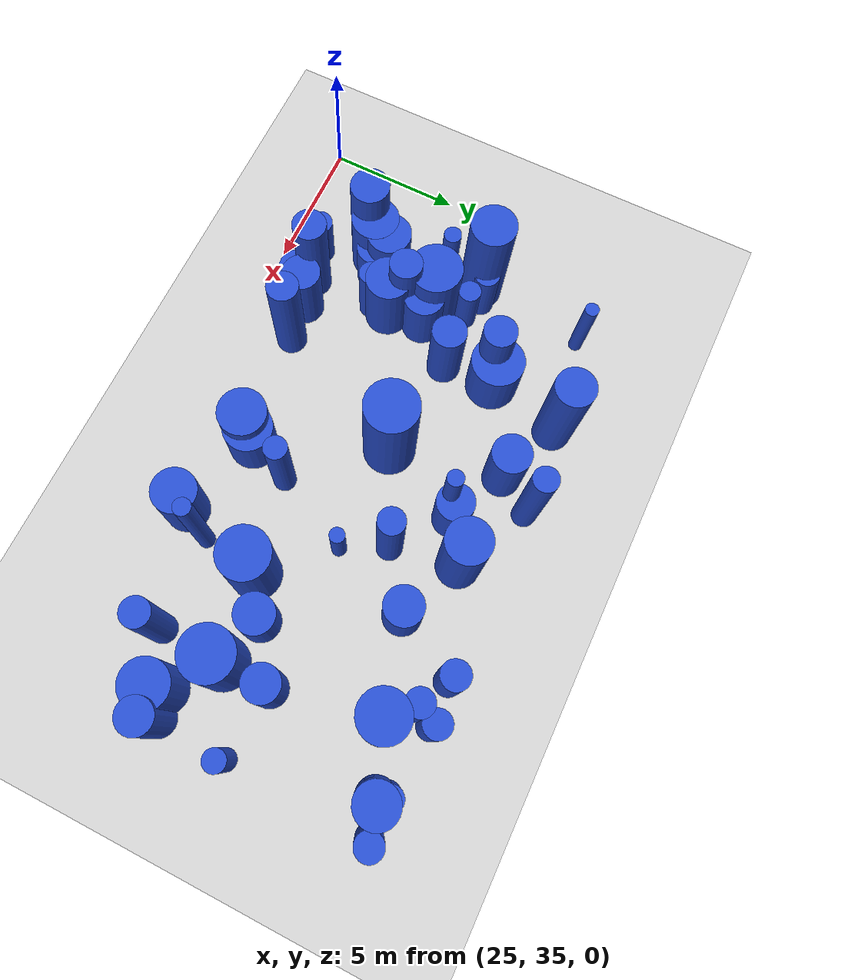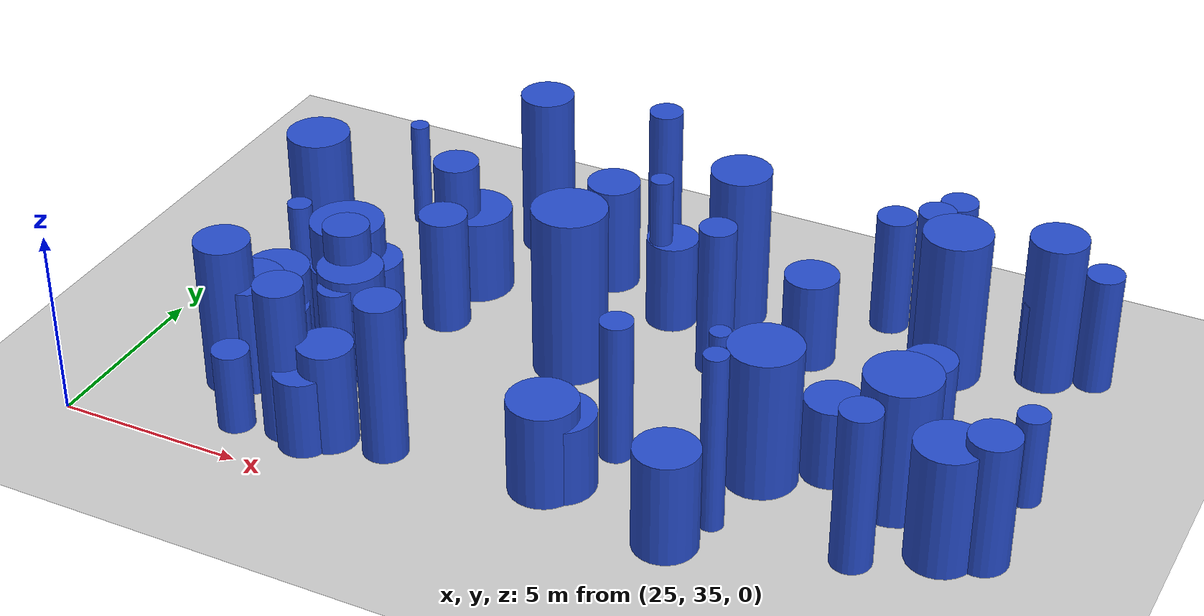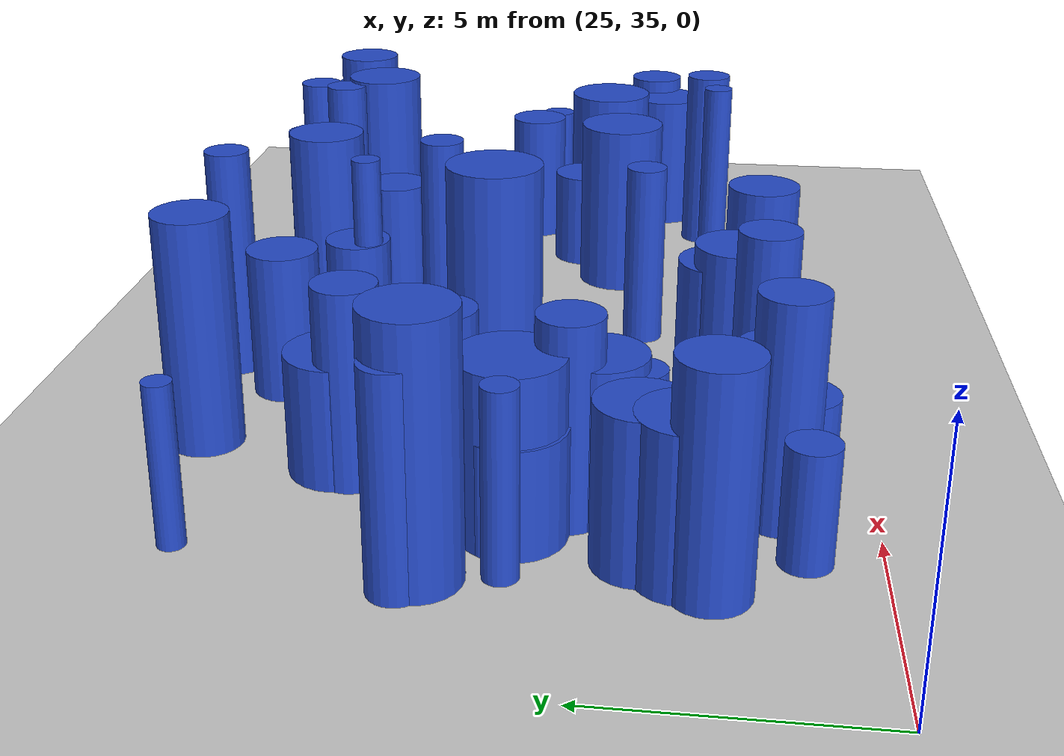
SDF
<sdf version="1.6">
 <world name="default">
  <model name="ground_plane">
   <static>1</static>
   <link name="link">
    <collision name="collision">
     <geometry><plane><normal>0 0 1</normal><size>100 100</size></plane></geometry>
     <surface><friction><ode><mu>100</mu><mu2>50</mu2></ode></friction></surface>
    </collision>
    <visual name="visual">
     <cast_shadows>0</cast_shadows>
     <geometry><plane><normal>0 0 1</normal><size>100 100</size></plane></geometry>
     <material>
      <script><uri>file://media/materials/scripts/gazebo.material</uri><name>Gazebo/Grey</name></script>
     </material>
    </visual>
   </link>
  </model>
  <model name="3">
   <static>0</static>
   <link name="link">
    <inertial>
     <mass>2</mass>
     <inertia><ixx>1.32488</ixx><ixy>0</ixy><ixz>0</ixz><iyy>1.32488</iyy><iyz>0</iyz><izz>0.51786</izz></inertia>
    </inertial>
    <collision name="collision">
     <geometry><cylinder><length>2.52897</length><radius>0.719625</radius></cylinder></geometry>
     <surface><contact><collide_without_contact>1</collide_without_contact></contact></surface>
    </collision>
    <visual name="visual">
     <geometry><cylinder><length>2.52897</length><radius>0.719625</radius></cylinder></geometry>
     <material>
      <script><uri>file://media/materials/scripts/gazebo.material</uri><name>Gazebo/Blue</name></script>
     </material>
    </visual>
    <gravity>0</gravity>
   </link>
   <pose>40.9199 45.4642 1.26449 0 -0 0</pose>
  </model>
  <model name="7">
   <static>0</static>
   <link name="link">
    <inertial>
     <mass>2</mass>
     <inertia><ixx>1.55105</ixx><ixy>0</ixy><ixz>0</ixz><iyy>1.55105</iyy><iyz>0</iyz><izz>0.812849</izz></inertia>
    </inertial>
    <collision name="collision">
     <geometry><cylinder><length>2.62064</length><radius>0.901581</radius></cylinder></geometry>
     <surface><contact><collide_without_contact>1</collide_without_contact></contact></surface>
    </collision>
    <visual name="visual">
     <geometry><cylinder><length>2.62064</length><radius>0.901581</radius></cylinder></geometry>
     <material>
      <script><uri>file://media/materials/scripts/gazebo.material</uri><name>Gazebo/Blue</name></script>
     </material>
    </visual>
    <gravity>0</gravity>
   </link>
   <pose>37.3399 37.4414 1.31032 0 -0 0</pose>
  </model>
  <model name="19">
   <static>0</static>
   <link name="link">
    <inertial>
     <mass>2</mass>
     <inertia><ixx>3.44669</ixx><ixy>0</ixy><ixz>0</ixz><iyy>3.44669</iyy><iyz>0</iyz><izz>0.34216</izz></inertia>
    </inertial>
    <collision name="collision">
     <geometry><cylinder><length>4.43325</length><radius>0.584945</radius></cylinder></geometry>
     <surface><contact><collide_without_contact>1</collide_without_contact></contact></surface>
    </collision>
    <visual name="visual">
     <geometry><cylinder><length>4.43325</length><radius>0.584945</radius></cylinder></geometry>
     <material>
      <script><uri>file://media/materials/scripts/gazebo.material</uri><name>Gazebo/Blue</name></script>
     </material>
    </visual>
    <gravity>0</gravity>
   </link>
   <pose>33.1585 37.0156 2.21662 0 -0 0</pose>
  </model>
  <model name="29">
   <static>0</static>
   <link name="link">
    <inertial>
     <mass>2</mass>
     <inertia>
      <ixx>0.975002</ixx>
      <ixy>0</ixy>
      <ixz>0</ixz>
      <iyy>0.975002</iyy>
      <iyz>0</iyz>
      <izz>0.174571</izz>
     </inertia>
    </inertial>
    <collision name="collision">
     <geometry><cylinder><length>2.30788</length><radius>0.417817</radius></cylinder></geometry>
     <surface><contact><collide_without_contact>1</collide_without_contact></contact></surface>
    </collision>
    <visual name="visual">
     <geometry><cylinder><length>2.30788</length><radius>0.417817</radius></cylinder></geometry>
     <material>
      <script><uri>file://media/materials/scripts/gazebo.material</uri><name>Gazebo/Blue</name></script>
     </material>
    </visual>
    <gravity>0</gravity>
   </link>
   <pose>29.3907 42.6499 1.15394 0 -0 0</pose>
  </model>
  <model name="33">
   <static>0</static>
   <link name="link">
    <inertial>
     <mass>2</mass>
     <inertia><ixx>1.18232</ixx><ixy>0</ixy><ixz>0</ixz><iyy>1.18232</iyy><iyz>0</iyz><izz>0.933247</izz></inertia>
    </inertial>
    <collision name="collision">
     <geometry><cylinder><length>2.07224</length><radius>0.966047</radius></cylinder></geometry>
     <surface><contact><collide_without_contact>1</collide_without_contact></contact></surface>
    </collision>
    <visual name="visual">
     <geometry><cylinder><length>2.07224</length><radius>0.966047</radius></cylinder></geometry>
     <material>
      <script><uri>file://media/materials/scripts/gazebo.material</uri><name>Gazebo/Blue</name></script>
     </material>
    </visual>
    <gravity>0</gravity>
   </link>
   <pose>29.552 41.2584 1.03612 0 -0 0</pose>
  </model>
  <model name="34">
   <static>0</static>
   <link name="link">
    <inertial>
     <mass>2</mass>
     <inertia><ixx>3.25336</ixx><ixy>0</ixy><ixz>0</ixz><iyy>3.25336</iyy><iyz>0</iyz><izz>0.568015</izz></inertia>
    </inertial>
    <collision name="collision">
     <geometry><cylinder><length>4.22092</length><radius>0.753668</radius></cylinder></geometry>
     <surface><contact><collide_without_contact>1</collide_without_contact></contact></surface>
    </collision>
    <visual name="visual">
     <geometry><cylinder><length>4.22092</length><radius>0.753668</radius></cylinder></geometry>
     <material>
      <script><uri>file://media/materials/scripts/gazebo.material</uri><name>Gazebo/Blue</name></script>
     </material>
    </visual>
    <gravity>0</gravity>
   </link>
   <pose>46.7338 47.3062 2.11046 0 -0 0</pose>
  </model>
  <model name="38">
   <static>0</static>
   <link name="link">
    <inertial>
     <mass>2</mass>
     <inertia><ixx>1.02896</ixx><ixy>0</ixy><ixz>0</ixz><iyy>1.02896</iyy><iyz>0</iyz><izz>0.550959</izz></inertia>
    </inertial>
    <collision name="collision">
     <geometry><cylinder><length>2.12623</length><radius>0.742266</radius></cylinder></geometry>
     <surface><contact><collide_without_contact>1</collide_without_contact></contact></surface>
    </collision>
    <visual name="visual">
     <geometry><cylinder><length>2.12623</length><radius>0.742266</radius></cylinder></geometry>
     <material>
      <script><uri>file://media/materials/scripts/gazebo.material</uri><name>Gazebo/Blue</name></script>
     </material>
    </visual>
    <gravity>0</gravity>
   </link>
   <pose>29.1701 38.6962 1.06311 0 -0 0</pose>
  </model>
  <model name="58">
   <static>0</static>
   <link name="link">
    <inertial>
     <mass>2</mass>
     <inertia><ixx>1.01116</ixx><ixy>0</ixy><ixz>0</ixz><iyy>1.01116</iyy><iyz>0</iyz><izz>0.471925</izz></inertia>
    </inertial>
    <collision name="collision">
     <geometry><cylinder><length>2.15666</length><radius>0.686968</radius></cylinder></geometry>
     <surface><contact><collide_without_contact>1</collide_without_contact></contact></surface>
    </collision>
    <visual name="visual">
     <geometry><cylinder><length>2.15666</length><radius>0.686968</radius></cylinder></geometry>
     <material>
      <script><uri>file://media/materials/scripts/gazebo.material</uri><name>Gazebo/Blue</name></script>
     </material>
    </visual>
    <gravity>0</gravity>
   </link>
   <pose>31.2002 36.402 1.07833 0 -0 0</pose>
  </model>
  <model name="64">
   <static>0</static>
   <link name="link">
    <inertial>
     <mass>2</mass>
     <inertia><ixx>2.96651</ixx><ixy>0</ixy><ixz>0</ixz><iyy>2.96651</iyy><iyz>0</iyz><izz>0.892374</izz></inertia>
    </inertial>
    <collision name="collision">
     <geometry><cylinder><length>3.88869</length><radius>0.944655</radius></cylinder></geometry>
     <surface><contact><collide_without_contact>1</collide_without_contact></contact></surface>
    </collision>
    <visual name="visual">
     <geometry><cylinder><length>3.88869</length><radius>0.944655</radius></cylinder></geometry>
     <material>
      <script><uri>file://media/materials/scripts/gazebo.material</uri><name>Gazebo/Blue</name></script>
     </material>
    </visual>
    <gravity>0</gravity>
   </link>
   <pose>41.8645 40.1542 1.94434 0 -0 0</pose>
  </model>
  <model name="75">
   <static>0</static>
   <link name="link">
    <inertial>
     <mass>2</mass>
     <inertia>
      <ixx>1.12046</ixx>
      <ixy>0</ixy>
      <ixz>0</ixz>
      <iyy>1.12046</iyy>
      <iyz>0</iyz>
      <izz>0.0821955</izz>
     </inertia>
    </inertial>
    <collision name="collision">
     <geometry><cylinder><length>2.54483</length><radius>0.286698</radius></cylinder></geometry>
     <surface><contact><collide_without_contact>1</collide_without_contact></contact></surface>
    </collision>
    <visual name="visual">
     <geometry><cylinder><length>2.54483</length><radius>0.286698</radius></cylinder></geometry>
     <material>
      <script><uri>file://media/materials/scripts/gazebo.material</uri><name>Gazebo/Blue</name></script>
     </material>
    </visual>
    <gravity>0</gravity>
   </link>
   <pose>34.7912 46.2772 1.27241 0 -0 0</pose>
  </model>
  <model name="97">
   <static>0</static>
   <link name="link">
    <inertial>
     <mass>2</mass>
     <inertia><ixx>3.06542</ixx><ixy>0</ixy><ixz>0</ixz><iyy>3.06542</iyy><iyz>0</iyz><izz>0.237937</izz></inertia>
    </inertial>
    <collision name="collision">
     <geometry><cylinder><length>4.20461</length><radius>0.487788</radius></cylinder></geometry>
     <surface><contact><collide_without_contact>1</collide_without_contact></contact></surface>
    </collision>
    <visual name="visual">
     <geometry><cylinder><length>4.20461</length><radius>0.487788</radius></cylinder></geometry>
     <material>
      <script><uri>file://media/materials/scripts/gazebo.material</uri><name>Gazebo/Blue</name></script>
     </material>
    </visual>
    <gravity>0</gravity>
   </link>
   <pose>38.9002 43.9954 2.1023 0 -0 0</pose>
  </model>
  <model name="99">
   <static>0</static>
   <link name="link">
    <inertial>
     <mass>2</mass>
     <inertia><ixx>3.60206</ixx><ixy>0</ixy><ixz>0</ixz><iyy>3.60206</iyy><iyz>0</iyz><izz>0.658908</izz></inertia>
    </inertial>
    <collision name="collision">
     <geometry><cylinder><length>4.43121</length><radius>0.811731</radius></cylinder></geometry>
     <surface><contact><collide_without_contact>1</collide_without_contact></contact></surface>
    </collision>
    <visual name="visual">
     <geometry><cylinder><length>4.43121</length><radius>0.811731</radius></cylinder></geometry>
     <material>
      <script><uri>file://media/materials/scripts/gazebo.material</uri><name>Gazebo/Blue</name></script>
     </material>
    </visual>
    <gravity>0</gravity>
   </link>
   <pose>38.4414 46.4906 2.21561 0 -0 0</pose>
  </model>
  <model name="100">
   <static>0</static>
   <link name="link">
    <inertial>
     <mass>2</mass>
     <inertia><ixx>4.22866</ixx><ixy>0</ixy><ixz>0</ixz><iyy>4.22866</iyy><iyz>0</iyz><izz>0.960089</izz></inertia>
    </inertial>
    <collision name="collision">
     <geometry><cylinder><length>4.74254</length><radius>0.979841</radius></cylinder></geometry>
     <surface><contact><collide_without_contact>1</collide_without_contact></contact></surface>
    </collision>
    <visual name="visual">
     <geometry><cylinder><length>4.74254</length><radius>0.979841</radius></cylinder></geometry>
     <material>
      <script><uri>file://media/materials/scripts/gazebo.material</uri><name>Gazebo/Blue</name></script>
     </material>
    </visual>
    <gravity>0</gravity>
   </link>
   <pose>35.549 42.3674 2.37127 0 -0 0</pose>
  </model>
  <model name="101">
   <static>0</static>
   <link name="link">
    <inertial>
     <mass>2</mass>
     <inertia><ixx>2.22594</ixx><ixy>0</ixy><ixz>0</ixz><iyy>2.22594</iyy><iyz>0</iyz><izz>0.205713</izz></inertia>
    </inertial>
    <collision name="collision">
     <geometry><cylinder><length>3.5691</length><radius>0.453555</radius></cylinder></geometry>
     <surface><contact><collide_without_contact>1</collide_without_contact></contact></surface>
    </collision>
    <visual name="visual">
     <geometry><cylinder><length>3.5691</length><radius>0.453555</radius></cylinder></geometry>
     <material>
      <script><uri>file://media/materials/scripts/gazebo.material</uri><name>Gazebo/Blue</name></script>
     </material>
    </visual>
    <gravity>0</gravity>
   </link>
   <pose>46.4323 47.5985 1.78455 0 -0 0</pose>
  </model>
  <model name="110">
   <static>0</static>
   <link name="link">
    <inertial>
     <mass>2</mass>
     <inertia>
      <ixx>0.946997</ixx>
      <ixy>0</ixy>
      <ixz>0</ixz>
      <iyy>0.946997</iyy>
      <iyz>0</iyz>
      <izz>0.230982</izz>
     </inertia>
    </inertial>
    <collision name="collision">
     <geometry><cylinder><length>2.23361</length><radius>0.480606</radius></cylinder></geometry>
     <surface><contact><collide_without_contact>1</collide_without_contact></contact></surface>
    </collision>
    <visual name="visual">
     <geometry><cylinder><length>2.23361</length><radius>0.480606</radius></cylinder></geometry>
     <material>
      <script><uri>file://media/materials/scripts/gazebo.material</uri><name>Gazebo/Blue</name></script>
     </material>
    </visual>
    <gravity>0</gravity>
   </link>
   <pose>29.2281 36.3305 1.11681 0 -0 0</pose>
  </model>
  <model name="122">
   <static>0</static>
   <link name="link">
    <inertial>
     <mass>2</mass>
     <inertia><ixx>3.29208</ixx><ixy>0</ixy><ixz>0</ixz><iyy>3.29208</iyy><iyz>0</iyz><izz>0.392404</izz></inertia>
    </inertial>
    <collision name="collision">
     <geometry><cylinder><length>4.30991</length><radius>0.626421</radius></cylinder></geometry>
     <surface><contact><collide_without_contact>1</collide_without_contact></contact></surface>
    </collision>
    <visual name="visual">
     <geometry><cylinder><length>4.30991</length><radius>0.626421</radius></cylinder></geometry>
     <material>
      <script><uri>file://media/materials/scripts/gazebo.material</uri><name>Gazebo/Blue</name></script>
     </material>
    </visual>
    <gravity>0</gravity>
   </link>
   <pose>30.545 36.7008 2.15495 0 -0 0</pose>
  </model>
  <model name="125">
   <static>0</static>
   <link name="link">
    <inertial>
     <mass>2</mass>
     <inertia><ixx>3.0237</ixx><ixy>0</ixy><ixz>0</ixz><iyy>3.0237</iyy><iyz>0</iyz><izz>0.240514</izz></inertia>
    </inertial>
    <collision name="collision">
     <geometry><cylinder><length>4.17381</length><radius>0.490422</radius></cylinder></geometry>
     <surface><contact><collide_without_contact>1</collide_without_contact></contact></surface>
    </collision>
    <visual name="visual">
     <geometry><cylinder><length>4.17381</length><radius>0.490422</radius></cylinder></geometry>
     <material>
      <script><uri>file://media/materials/scripts/gazebo.material</uri><name>Gazebo/Blue</name></script>
     </material>
    </visual>
    <gravity>0</gravity>
   </link>
   <pose>43.5516 47.2178 2.0869 0 -0 0</pose>
  </model>
  <model name="128">
   <static>0</static>
   <link name="link">
    <inertial>
     <mass>2</mass>
     <inertia><ixx>1.43318</ixx><ixy>0</ixy><ixz>0</ixz><iyy>1.43318</iyy><iyz>0</iyz><izz>0.965714</izz></inertia>
    </inertial>
    <collision name="collision">
     <geometry><cylinder><length>2.38787</length><radius>0.982708</radius></cylinder></geometry>
     <surface><contact><collide_without_contact>1</collide_without_contact></contact></surface>
    </collision>
    <visual name="visual">
     <geometry><cylinder><length>2.38787</length><radius>0.982708</radius></cylinder></geometry>
     <material>
      <script><uri>file://media/materials/scripts/gazebo.material</uri><name>Gazebo/Blue</name></script>
     </material>
    </visual>
    <gravity>0</gravity>
   </link>
   <pose>31.5115 44.7196 1.19394 0 -0 0</pose>
  </model>
  <model name="143">
   <static>0</static>
   <link name="link">
    <inertial>
     <mass>2</mass>
     <inertia><ixx>3.93473</ixx><ixy>0</ixy><ixz>0</ixz><iyy>3.93473</iyy><iyz>0</iyz><izz>0.206258</izz></inertia>
    </inertial>
    <collision name="collision">
     <geometry><cylinder><length>4.79475</length><radius>0.454157</radius></cylinder></geometry>
     <surface><contact><collide_without_contact>1</collide_without_contact></contact></surface>
    </collision>
    <visual name="visual">
     <geometry><cylinder><length>4.79475</length><radius>0.454157</radius></cylinder></geometry>
     <material>
      <script><uri>file://media/materials/scripts/gazebo.material</uri><name>Gazebo/Blue</name></script>
     </material>
    </visual>
    <gravity>0</gravity>
   </link>
   <pose>35.6397 47.8653 2.39737 0 -0 0</pose>
  </model>
  <model name="151">
   <static>0</static>
   <link name="link">
    <inertial>
     <mass>2</mass>
     <inertia><ixx>1.90216</ixx><ixy>0</ixy><ixz>0</ixz><iyy>1.90216</iyy><iyz>0</iyz><izz>0.795254</izz></inertia>
    </inertial>
    <collision name="collision">
     <geometry><cylinder><length>3.00453</length><radius>0.89177</radius></cylinder></geometry>
     <surface><contact><collide_without_contact>1</collide_without_contact></contact></surface>
    </collision>
    <visual name="visual">
     <geometry><cylinder><length>3.00453</length><radius>0.89177</radius></cylinder></geometry>
     <material>
      <script><uri>file://media/materials/scripts/gazebo.material</uri><name>Gazebo/Blue</name></script>
     </material>
    </visual>
    <gravity>0</gravity>
   </link>
   <pose>28.5536 38.351 1.50226 0 -0 0</pose>
  </model>
  <model name="154">
   <static>0</static>
   <link name="link">
    <inertial>
     <mass>2</mass>
     <inertia><ixx>1.08129</ixx><ixy>0</ixy><ixz>0</ixz><iyy>1.08129</iyy><iyz>0</iyz><izz>0.230415</izz></inertia>
    </inertial>
    <collision name="collision">
     <geometry><cylinder><length>2.40759</length><radius>0.480015</radius></cylinder></geometry>
     <surface><contact><collide_without_contact>1</collide_without_contact></contact></surface>
    </collision>
    <visual name="visual">
     <geometry><cylinder><length>2.40759</length><radius>0.480015</radius></cylinder></geometry>
     <material>
      <script><uri>file://media/materials/scripts/gazebo.material</uri><name>Gazebo/Blue</name></script>
     </material>
    </visual>
    <gravity>0</gravity>
   </link>
   <pose>28.5346 42.9609 1.2038 0 -0 0</pose>
  </model>
  <model name="155">
   <static>0</static>
   <link name="link">
    <inertial>
     <mass>2</mass>
     <inertia><ixx>1.12011</ixx><ixy>0</ixy><ixz>0</ixz><iyy>1.12011</iyy><iyz>0</iyz><izz>0.166165</izz></inertia>
    </inertial>
    <collision name="collision">
     <geometry><cylinder><length>2.49443</length><radius>0.407633</radius></cylinder></geometry>
     <surface><contact><collide_without_contact>1</collide_without_contact></contact></surface>
    </collision>
    <visual name="visual">
     <geometry><cylinder><length>2.49443</length><radius>0.407633</radius></cylinder></geometry>
     <material>
      <script><uri>file://media/materials/scripts/gazebo.material</uri><name>Gazebo/Blue</name></script>
     </material>
    </visual>
    <gravity>0</gravity>
   </link>
   <pose>47.8927 42.2093 1.24721 0 -0 0</pose>
  </model>
  <model name="180">
   <static>0</static>
   <link name="link">
    <inertial>
     <mass>2</mass>
     <inertia><ixx>4.25872</ixx><ixy>0</ixy><ixz>0</ixz><iyy>4.25872</iyy><iyz>0</iyz><izz>0.693397</izz></inertia>
    </inertial>
    <collision name="collision">
     <geometry><cylinder><length>4.8448</length><radius>0.832705</radius></cylinder></geometry>
     <surface><contact><collide_without_contact>1</collide_without_contact></contact></surface>
    </collision>
    <visual name="visual">
     <geometry><cylinder><length>4.8448</length><radius>0.832705</radius></cylinder></geometry>
     <material>
      <script><uri>file://media/materials/scripts/gazebo.material</uri><name>Gazebo/Blue</name></script>
     </material>
    </visual>
    <gravity>0</gravity>
   </link>
   <pose>28.0065 42.6788 2.4224 0 -0 0</pose>
  </model>
  <model name="189">
   <static>0</static>
   <link name="link">
    <inertial>
     <mass>2</mass>
     <inertia><ixx>1.79435</ixx><ixy>0</ixy><ixz>0</ixz><iyy>1.79435</iyy><iyz>0</iyz><izz>0.448999</izz></inertia>
    </inertial>
    <collision name="collision">
     <geometry><cylinder><length>3.06906</length><radius>0.670074</radius></cylinder></geometry>
     <surface><contact><collide_without_contact>1</collide_without_contact></contact></surface>
    </collision>
    <visual name="visual">
     <geometry><cylinder><length>3.06906</length><radius>0.670074</radius></cylinder></geometry>
     <material>
      <script><uri>file://media/materials/scripts/gazebo.material</uri><name>Gazebo/Blue</name></script>
     </material>
    </visual>
    <gravity>0</gravity>
   </link>
   <pose>45.1791 42.4775 1.53453 0 -0 0</pose>
  </model>
  <model name="202">
   <static>0</static>
   <link name="link">
    <inertial>
     <mass>2</mass>
     <inertia><ixx>1.59909</ixx><ixy>0</ixy><ixz>0</ixz><iyy>1.59909</iyy><iyz>0</iyz><izz>0.511426</izz></inertia>
    </inertial>
    <collision name="collision">
     <geometry><cylinder><length>2.83907</length><radius>0.71514</radius></cylinder></geometry>
     <surface><contact><collide_without_contact>1</collide_without_contact></contact></surface>
    </collision>
    <visual name="visual">
     <geometry><cylinder><length>2.83907</length><radius>0.71514</radius></cylinder></geometry>
     <material>
      <script><uri>file://media/materials/scripts/gazebo.material</uri><name>Gazebo/Blue</name></script>
     </material>
    </visual>
    <gravity>0</gravity>
   </link>
   <pose>31.6839 36.8491 1.41953 0 -0 0</pose>
  </model>
  <model name="204">
   <static>0</static>
   <link name="link">
    <inertial>
     <mass>2</mass>
     <inertia><ixx>1.18468</ixx><ixy>0</ixy><ixz>0</ixz><iyy>1.18468</iyy><iyz>0</iyz><izz>0.842136</izz></inertia>
    </inertial>
    <collision name="collision">
     <geometry><cylinder><length>2.14048</length><radius>0.91768</radius></cylinder></geometry>
     <surface><contact><collide_without_contact>1</collide_without_contact></contact></surface>
    </collision>
    <visual name="visual">
     <geometry><cylinder><length>2.14048</length><radius>0.91768</radius></cylinder></geometry>
     <material>
      <script><uri>file://media/materials/scripts/gazebo.material</uri><name>Gazebo/Blue</name></script>
     </material>
    </visual>
    <gravity>0</gravity>
   </link>
   <pose>37.629 37.7614 1.07024 0 -0 0</pose>
  </model>
  <model name="262">
   <static>0</static>
   <link name="link">
    <inertial>
     <mass>2</mass>
     <inertia><ixx>1.89159</ixx><ixy>0</ixy><ixz>0</ixz><iyy>1.89159</iyy><iyz>0</iyz><izz>0.73683</izz></inertia>
    </inertial>
    <collision name="collision">
     <geometry><cylinder><length>3.02309</length><radius>0.858388</radius></cylinder></geometry>
     <surface><contact><collide_without_contact>1</collide_without_contact></contact></surface>
    </collision>
    <visual name="visual">
     <geometry><cylinder><length>3.02309</length><radius>0.858388</radius></cylinder></geometry>
     <material>
      <script><uri>file://media/materials/scripts/gazebo.material</uri><name>Gazebo/Blue</name></script>
     </material>
    </visual>
    <gravity>0</gravity>
   </link>
   <pose>30.569 39.8732 1.51154 0 -0 0</pose>
  </model>
  <model name="265">
   <static>0</static>
   <link name="link">
    <inertial>
     <mass>2</mass>
     <inertia><ixx>1.29568</ixx><ixy>0</ixy><ixz>0</ixz><iyy>1.29568</iyy><iyz>0</iyz><izz>0.57723</izz></inertia>
    </inertial>
    <collision name="collision">
     <geometry><cylinder><length>2.45812</length><radius>0.759757</radius></cylinder></geometry>
     <surface><contact><collide_without_contact>1</collide_without_contact></contact></surface>
    </collision>
    <visual name="visual">
     <geometry><cylinder><length>2.45812</length><radius>0.759757</radius></cylinder></geometry>
     <material>
      <script><uri>file://media/materials/scripts/gazebo.material</uri><name>Gazebo/Blue</name></script>
     </material>
    </visual>
    <gravity>0</gravity>
   </link>
   <pose>30.4032 41.263 1.22906 0 -0 0</pose>
  </model>
  <model name="268">
   <static>0</static>
   <link name="link">
    <inertial>
     <mass>2</mass>
     <inertia><ixx>4.04036</ixx><ixy>0</ixy><ixz>0</ixz><iyy>4.04036</iyy><iyz>0</iyz><izz>0.098773</izz></inertia>
    </inertial>
    <collision name="collision">
     <geometry><cylinder><length>4.89345</length><radius>0.314282</radius></cylinder></geometry>
     <surface><contact><collide_without_contact>1</collide_without_contact></contact></surface>
    </collision>
    <visual name="visual">
     <geometry><cylinder><length>4.89345</length><radius>0.314282</radius></cylinder></geometry>
     <material>
      <script><uri>file://media/materials/scripts/gazebo.material</uri><name>Gazebo/Blue</name></script>
     </material>
    </visual>
    <gravity>0</gravity>
   </link>
   <pose>41.5509 37.9405 2.44672 0 -0 0</pose>
  </model>
  <model name="269">
   <static>0</static>
   <link name="link">
    <inertial>
     <mass>2</mass>
     <inertia><ixx>2.86463</ixx><ixy>0</ixy><ixz>0</ixz><iyy>2.86463</iyy><iyz>0</iyz><izz>0.940522</izz></inertia>
    </inertial>
    <collision name="collision">
     <geometry><cylinder><length>3.79028</length><radius>0.969805</radius></cylinder></geometry>
     <surface><contact><collide_without_contact>1</collide_without_contact></contact></surface>
    </collision>
    <visual name="visual">
     <geometry><cylinder><length>3.79028</length><radius>0.969805</radius></cylinder></geometry>
     <material>
      <script><uri>file://media/materials/scripts/gazebo.material</uri><name>Gazebo/Blue</name></script>
     </material>
    </visual>
    <gravity>0</gravity>
   </link>
   <pose>45.1383 40.6222 1.89514 0 -0 0</pose>
  </model>
  <model name="272">
   <static>0</static>
   <link name="link">
    <inertial>
     <mass>2</mass>
     <inertia><ixx>2.34393</ixx><ixy>0</ixy><ixz>0</ixz><iyy>2.34393</iyy><iyz>0</iyz><izz>0.963315</izz></inertia>
    </inertial>
    <collision name="collision">
     <geometry><cylinder><length>3.3427</length><radius>0.981486</radius></cylinder></geometry>
     <surface><contact><collide_without_contact>1</collide_without_contact></contact></surface>
    </collision>
    <visual name="visual">
     <geometry><cylinder><length>3.3427</length><radius>0.981486</radius></cylinder></geometry>
     <material>
      <script><uri>file://media/materials/scripts/gazebo.material</uri><name>Gazebo/Blue</name></script>
     </material>
    </visual>
    <gravity>0</gravity>
   </link>
   <pose>29.6126 41.3129 1.67135 0 -0 0</pose>
  </model>
  <model name="275">
   <static>0</static>
   <link name="link">
    <inertial>
     <mass>2</mass>
     <inertia>
      <ixx>3.23204</ixx>
      <ixy>0</ixy>
      <ixz>0</ixz>
      <iyy>3.23204</iyy>
      <iyz>0</iyz>
      <izz>0.0905811</izz>
     </inertia>
    </inertial>
    <collision name="collision">
     <geometry><cylinder><length>4.3727</length><radius>0.300967</radius></cylinder></geometry>
     <surface><contact><collide_without_contact>1</collide_without_contact></contact></surface>
    </collision>
    <visual name="visual">
     <geometry><cylinder><length>4.3727</length><radius>0.300967</radius></cylinder></geometry>
     <material>
      <script><uri>file://media/materials/scripts/gazebo.material</uri><name>Gazebo/Blue</name></script>
     </material>
    </visual>
    <gravity>0</gravity>
   </link>
   <pose>36.7475 45.2467 2.18635 0 -0 0</pose>
  </model>
  <model name="283">
   <static>0</static>
   <link name="link">
    <inertial>
     <mass>2</mass>
     <inertia><ixx>3.28258</ixx><ixy>0</ixy><ixz>0</ixz><iyy>3.28258</iyy><iyz>0</iyz><izz>0.272507</izz></inertia>
    </inertial>
    <collision name="collision">
     <geometry><cylinder><length>4.34488</length><radius>0.522022</radius></cylinder></geometry>
     <surface><contact><collide_without_contact>1</collide_without_contact></contact></surface>
    </collision>
    <visual name="visual">
     <geometry><cylinder><length>4.34488</length><radius>0.522022</radius></cylinder></geometry>
     <material>
      <script><uri>file://media/materials/scripts/gazebo.material</uri><name>Gazebo/Blue</name></script>
     </material>
    </visual>
    <gravity>0</gravity>
   </link>
   <pose>45.0233 38.1385 2.17244 0 -0 0</pose>
  </model>
  <model name="286">
   <static>0</static>
   <link name="link">
    <inertial>
     <mass>2</mass>
     <inertia><ixx>2.67394</ixx><ixy>0</ixy><ixz>0</ixz><iyy>2.67394</iyy><iyz>0</iyz><izz>0.37361</izz></inertia>
    </inertial>
    <collision name="collision">
     <geometry><cylinder><length>3.863</length><radius>0.611237</radius></cylinder></geometry>
     <surface><contact><collide_without_contact>1</collide_without_contact></contact></surface>
    </collision>
    <visual name="visual">
     <geometry><cylinder><length>3.863</length><radius>0.611237</radius></cylinder></geometry>
     <material>
      <script><uri>file://media/materials/scripts/gazebo.material</uri><name>Gazebo/Blue</name></script>
     </material>
    </visual>
    <gravity>0</gravity>
   </link>
   <pose>31.1164 44.4325 1.9315 0 -0 0</pose>
  </model>
  <model name="294">
   <static>0</static>
   <link name="link">
    <inertial>
     <mass>2</mass>
     <inertia><ixx>3.22795</ixx><ixy>0</ixy><ixz>0</ixz><iyy>3.22795</iyy><iyz>0</iyz><izz>0.529863</izz></inertia>
    </inertial>
    <collision name="collision">
     <geometry><cylinder><length>4.21641</length><radius>0.727917</radius></cylinder></geometry>
     <surface><contact><collide_without_contact>1</collide_without_contact></contact></surface>
    </collision>
    <visual name="visual">
     <geometry><cylinder><length>4.21641</length><radius>0.727917</radius></cylinder></geometry>
     <material>
      <script><uri>file://media/materials/scripts/gazebo.material</uri><name>Gazebo/Blue</name></script>
     </material>
    </visual>
    <gravity>0</gravity>
   </link>
   <pose>28.1081 37.9146 2.1082 0 -0 0</pose>
  </model>
  <model name="322">
   <static>0</static>
   <link name="link">
    <inertial>
     <mass>2</mass>
     <inertia><ixx>1.39692</ixx><ixy>0</ixy><ixz>0</ixz><iyy>1.39692</iyy><iyz>0</iyz><izz>0.219752</izz></inertia>
    </inertial>
    <collision name="collision">
     <geometry><cylinder><length>2.7789</length><radius>0.468777</radius></cylinder></geometry>
     <surface><contact><collide_without_contact>1</collide_without_contact></contact></surface>
    </collision>
    <visual name="visual">
     <geometry><cylinder><length>2.7789</length><radius>0.468777</radius></cylinder></geometry>
     <material>
      <script><uri>file://media/materials/scripts/gazebo.material</uri><name>Gazebo/Blue</name></script>
     </material>
    </visual>
    <gravity>0</gravity>
   </link>
   <pose>30.5481 39.1734 1.38945 0 -0 0</pose>
  </model>
  <model name="325">
   <static>0</static>
   <link name="link">
    <inertial>
     <mass>2</mass>
     <inertia><ixx>2.87251</ixx><ixy>0</ixy><ixz>0</ixz><iyy>2.87251</iyy><iyz>0</iyz><izz>0.25607</izz></inertia>
    </inertial>
    <collision name="collision">
     <geometry><cylinder><length>4.05794</length><radius>0.506034</radius></cylinder></geometry>
     <surface><contact><collide_without_contact>1</collide_without_contact></contact></surface>
    </collision>
    <visual name="visual">
     <geometry><cylinder><length>4.05794</length><radius>0.506034</radius></cylinder></geometry>
     <material>
      <script><uri>file://media/materials/scripts/gazebo.material</uri><name>Gazebo/Blue</name></script>
     </material>
    </visual>
    <gravity>0</gravity>
   </link>
   <pose>27.5829 42.9209 2.02897 0 -0 0</pose>
  </model>
  <model name="333">
   <static>0</static>
   <link name="link">
    <inertial>
     <mass>2</mass>
     <inertia><ixx>1.9837</ixx><ixy>0</ixy><ixz>0</ixz><iyy>1.9837</iyy><iyz>0</iyz><izz>0.274031</izz></inertia>
    </inertial>
    <collision name="collision">
     <geometry><cylinder><length>3.32868</length><radius>0.52348</radius></cylinder></geometry>
     <surface><contact><collide_without_contact>1</collide_without_contact></contact></surface>
    </collision>
    <visual name="visual">
     <geometry><cylinder><length>3.32868</length><radius>0.52348</radius></cylinder></geometry>
     <material>
      <script><uri>file://media/materials/scripts/gazebo.material</uri><name>Gazebo/Blue</name></script>
     </material>
    </visual>
    <gravity>0</gravity>
   </link>
   <pose>42.2642 47.8816 1.66434 0 -0 0</pose>
  </model>
  <model name="334">
   <static>0</static>
   <link name="link">
    <inertial>
     <mass>2</mass>
     <inertia><ixx>2.06383</ixx><ixy>0</ixy><ixz>0</ixz><iyy>2.06383</iyy><iyz>0</iyz><izz>0.104386</izz></inertia>
    </inertial>
    <collision name="collision">
     <geometry><cylinder><length>3.47416</length><radius>0.323088</radius></cylinder></geometry>
     <surface><contact><collide_without_contact>1</collide_without_contact></contact></surface>
    </collision>
    <visual name="visual">
     <geometry><cylinder><length>3.47416</length><radius>0.323088</radius></cylinder></geometry>
     <material>
      <script><uri>file://media/materials/scripts/gazebo.material</uri><name>Gazebo/Blue</name></script>
     </material>
    </visual>
    <gravity>0</gravity>
   </link>
   <pose>28.1912 41.2979 1.73708 0 -0 0</pose>
  </model>
  <model name="345">
   <static>0</static>
   <link name="link">
    <inertial>
     <mass>2</mass>
     <inertia><ixx>2.67654</ixx><ixy>0</ixy><ixz>0</ixz><iyy>2.67654</iyy><iyz>0</iyz><izz>0.181786</izz></inertia>
    </inertial>
    <collision name="collision">
     <geometry><cylinder><length>3.93876</length><radius>0.426364</radius></cylinder></geometry>
     <surface><contact><collide_without_contact>1</collide_without_contact></contact></surface>
    </collision>
    <visual name="visual">
     <geometry><cylinder><length>3.93876</length><radius>0.426364</radius></cylinder></geometry>
     <material>
      <script><uri>file://media/materials/scripts/gazebo.material</uri><name>Gazebo/Blue</name></script>
     </material>
    </visual>
    <gravity>0</gravity>
   </link>
   <pose>38.3081 39.4274 1.96938 0 -0 0</pose>
  </model>
  <model name="347">
   <static>0</static>
   <link name="link">
    <inertial>
     <mass>2</mass>
     <inertia><ixx>1.84704</ixx><ixy>0</ixy><ixz>0</ixz><iyy>1.84704</iyy><iyz>0</iyz><izz>0.692939</izz></inertia>
    </inertial>
    <collision name="collision">
     <geometry><cylinder><length>3.00057</length><radius>0.832429</radius></cylinder></geometry>
     <surface><contact><collide_without_contact>1</collide_without_contact></contact></surface>
    </collision>
    <visual name="visual">
     <geometry><cylinder><length>3.00057</length><radius>0.832429</radius></cylinder></geometry>
     <material>
      <script><uri>file://media/materials/scripts/gazebo.material</uri><name>Gazebo/Blue</name></script>
     </material>
    </visual>
    <gravity>0</gravity>
   </link>
   <pose>28.8964 39.0865 1.50029 0 -0 0</pose>
  </model>
  <model name="358">
   <static>0</static>
   <link name="link">
    <inertial>
     <mass>2</mass>
     <inertia><ixx>1.9852</ixx><ixy>0</ixy><ixz>0</ixz><iyy>1.9852</iyy><iyz>0</iyz><izz>0.410142</izz></inertia>
    </inertial>
    <collision name="collision">
     <geometry><cylinder><length>3.26814</length><radius>0.640423</radius></cylinder></geometry>
     <surface><contact><collide_without_contact>1</collide_without_contact></contact></surface>
    </collision>
    <visual name="visual">
     <geometry><cylinder><length>3.26814</length><radius>0.640423</radius></cylinder></geometry>
     <material>
      <script><uri>file://media/materials/scripts/gazebo.material</uri><name>Gazebo/Blue</name></script>
     </material>
    </visual>
    <gravity>0</gravity>
   </link>
   <pose>31.6316 42.7754 1.63407 0 -0 0</pose>
  </model>
  <model name="367">
   <static>0</static>
   <link name="link">
    <inertial>
     <mass>2</mass>
     <inertia><ixx>2.68991</ixx><ixy>0</ixy><ixz>0</ixz><iyy>2.68991</iyy><iyz>0</iyz><izz>0.371054</izz></inertia>
    </inertial>
    <collision name="collision">
     <geometry><cylinder><length>3.87638</length><radius>0.609142</radius></cylinder></geometry>
     <surface><contact><collide_without_contact>1</collide_without_contact></contact></surface>
    </collision>
    <visual name="visual">
     <geometry><cylinder><length>3.87638</length><radius>0.609142</radius></cylinder></geometry>
     <material>
      <script><uri>file://media/materials/scripts/gazebo.material</uri><name>Gazebo/Blue</name></script>
     </material>
    </visual>
    <gravity>0</gravity>
   </link>
   <pose>30.1985 40.3664 1.93819 0 -0 0</pose>
  </model>
  <model name="372">
   <static>0</static>
   <link name="link">
    <inertial>
     <mass>2</mass>
     <inertia><ixx>1.63686</ixx><ixy>0</ixy><ixz>0</ixz><iyy>1.63686</iyy><iyz>0</iyz><izz>0.678212</izz></inertia>
    </inertial>
    <collision name="collision">
     <geometry><cylinder><length>2.79043</length><radius>0.823536</radius></cylinder></geometry>
     <surface><contact><collide_without_contact>1</collide_without_contact></contact></surface>
    </collision>
    <visual name="visual">
     <geometry><cylinder><length>2.79043</length><radius>0.823536</radius></cylinder></geometry>
     <material>
      <script><uri>file://media/materials/scripts/gazebo.material</uri><name>Gazebo/Blue</name></script>
     </material>
    </visual>
    <gravity>0</gravity>
   </link>
   <pose>40.891 36.785 1.39522 0 -0 0</pose>
  </model>
  <model name="373">
   <static>0</static>
   <link name="link">
    <inertial>
     <mass>2</mass>
     <inertia><ixx>1.08877</ixx><ixy>0</ixy><ixz>0</ixz><iyy>1.08877</iyy><iyz>0</iyz><izz>0.545567</izz></inertia>
    </inertial>
    <collision name="collision">
     <geometry><cylinder><length>2.21267</length><radius>0.738625</radius></cylinder></geometry>
     <surface><contact><collide_without_contact>1</collide_without_contact></contact></surface>
    </collision>
    <visual name="visual">
     <geometry><cylinder><length>2.21267</length><radius>0.738625</radius></cylinder></geometry>
     <material>
      <script><uri>file://media/materials/scripts/gazebo.material</uri><name>Gazebo/Blue</name></script>
     </material>
    </visual>
    <gravity>0</gravity>
   </link>
   <pose>43.291 41.1069 1.10634 0 -0 0</pose>
  </model>
  <model name="399">
   <static>0</static>
   <link name="link">
    <inertial>
     <mass>2</mass>
     <inertia><ixx>1.29372</ixx><ixy>0</ixy><ixz>0</ixz><iyy>1.29372</iyy><iyz>0</iyz><izz>0.476447</izz></inertia>
    </inertial>
    <collision name="collision">
     <geometry><cylinder><length>2.51654</length><radius>0.690251</radius></cylinder></geometry>
     <surface><contact><collide_without_contact>1</collide_without_contact></contact></surface>
    </collision>
    <visual name="visual">
     <geometry><cylinder><length>2.51654</length><radius>0.690251</radius></cylinder></geometry>
     <material>
      <script><uri>file://media/materials/scripts/gazebo.material</uri><name>Gazebo/Blue</name></script>
     </material>
    </visual>
    <gravity>0</gravity>
   </link>
   <pose>36.9618 45.5275 1.25827 0 -0 0</pose>
  </model>
  <model name="415">
   <static>0</static>
   <link name="link">
    <inertial>
     <mass>2</mass>
     <inertia><ixx>1.9356</ixx><ixy>0</ixy><ixz>0</ixz><iyy>1.9356</iyy><iyz>0</iyz><izz>0.240736</izz></inertia>
    </inertial>
    <collision name="collision">
     <geometry><cylinder><length>3.30021</length><radius>0.490649</radius></cylinder></geometry>
     <surface><contact><collide_without_contact>1</collide_without_contact></contact></surface>
    </collision>
    <visual name="visual">
     <geometry><cylinder><length>3.30021</length><radius>0.490649</radius></cylinder></geometry>
     <material>
      <script><uri>file://media/materials/scripts/gazebo.material</uri><name>Gazebo/Blue</name></script>
     </material>
    </visual>
    <gravity>0</gravity>
   </link>
   <pose>47.9137 47.6378 1.6501 0 -0 0</pose>
  </model>
  <model name="426">
   <static>0</static>
   <link name="link">
    <inertial>
     <mass>2</mass>
     <inertia><ixx>3.86332</ixx><ixy>0</ixy><ixz>0</ixz><iyy>3.86332</iyy><iyz>0</iyz><izz>0.525612</izz></inertia>
    </inertial>
    <collision name="collision">
     <geometry><cylinder><length>4.64791</length><radius>0.724991</radius></cylinder></geometry>
     <surface><contact><collide_without_contact>1</collide_without_contact></contact></surface>
    </collision>
    <visual name="visual">
     <geometry><cylinder><length>4.64791</length><radius>0.724991</radius></cylinder></geometry>
     <material>
      <script><uri>file://media/materials/scripts/gazebo.material</uri><name>Gazebo/Blue</name></script>
     </material>
    </visual>
    <gravity>0</gravity>
   </link>
   <pose>32.2465 47.5292 2.32396 0 -0 0</pose>
  </model>
  <model name="441">
   <static>0</static>
   <link name="link">
    <inertial>
     <mass>2</mass>
     <inertia><ixx>2.98488</ixx><ixy>0</ixy><ixz>0</ixz><iyy>2.98488</iyy><iyz>0</iyz><izz>0.238866</izz></inertia>
    </inertial>
    <collision name="collision">
     <geometry><cylinder><length>4.14641</length><radius>0.488739</radius></cylinder></geometry>
     <surface><contact><collide_without_contact>1</collide_without_contact></contact></surface>
    </collision>
    <visual name="visual">
     <geometry><cylinder><length>4.14641</length><radius>0.488739</radius></cylinder></geometry>
     <material>
      <script><uri>file://media/materials/scripts/gazebo.material</uri><name>Gazebo/Blue</name></script>
     </material>
    </visual>
    <gravity>0</gravity>
   </link>
   <pose>43.8858 47.9486 2.0732 0 -0 0</pose>
  </model>
  <model name="450">
   <static>0</static>
   <link name="link">
    <inertial>
     <mass>2</mass>
     <inertia>
      <ixx>0.913095</ixx>
      <ixy>0</ixy>
      <ixz>0</ixz>
      <iyy>0.913095</iyy>
      <iyz>0</iyz>
      <izz>0.0805287</izz>
     </inertia>
    </inertial>
    <collision name="collision">
     <geometry><cylinder><length>2.28845</length><radius>0.283776</radius></cylinder></geometry>
     <surface><contact><collide_without_contact>1</collide_without_contact></contact></surface>
    </collision>
    <visual name="visual">
     <geometry><cylinder><length>2.28845</length><radius>0.283776</radius></cylinder></geometry>
     <material>
      <script><uri>file://media/materials/scripts/gazebo.material</uri><name>Gazebo/Blue</name></script>
     </material>
    </visual>
    <gravity>0</gravity>
   </link>
   <pose>39.7376 42.3866 1.14422 0 -0 0</pose>
  </model>
  <model name="455">
   <static>0</static>
   <link name="link">
    <inertial>
     <mass>2</mass>
     <inertia><ixx>1.07945</ixx><ixy>0</ixy><ixz>0</ixz><iyy>1.07945</iyy><iyz>0</iyz><izz>0.249062</izz></inertia>
    </inertial>
    <collision name="collision">
     <geometry><cylinder><length>2.39364</length><radius>0.499062</radius></cylinder></geometry>
     <surface><contact><collide_without_contact>1</collide_without_contact></contact></surface>
    </collision>
    <visual name="visual">
     <geometry><cylinder><length>2.39364</length><radius>0.499062</radius></cylinder></geometry>
     <material>
      <script><uri>file://media/materials/scripts/gazebo.material</uri><name>Gazebo/Blue</name></script>
     </material>
    </visual>
    <gravity>0</gravity>
   </link>
   <pose>46.5454 47.1216 1.19682 0 -0 0</pose>
  </model>
  <model name="470">
   <static>0</static>
   <link name="link">
    <inertial>
     <mass>2</mass>
     <inertia><ixx>3.40932</ixx><ixy>0</ixy><ixz>0</ixz><iyy>3.40932</iyy><iyz>0</iyz><izz>0.808414</izz></inertia>
    </inertial>
    <collision name="collision">
     <geometry><cylinder><length>4.24626</length><radius>0.899118</radius></cylinder></geometry>
     <surface><contact><collide_without_contact>1</collide_without_contact></contact></surface>
    </collision>
    <visual name="visual">
     <geometry><cylinder><length>4.24626</length><radius>0.899118</radius></cylinder></geometry>
     <material>
      <script><uri>file://media/materials/scripts/gazebo.material</uri><name>Gazebo/Blue</name></script>
     </material>
    </visual>
    <gravity>0</gravity>
   </link>
   <pose>44.3872 46.3983 2.12313 0 -0 0</pose>
  </model>
  <model name="491">
   <static>0</static>
   <link name="link">
    <inertial>
     <mass>2</mass>
     <inertia><ixx>2.38518</ixx><ixy>0</ixy><ixz>0</ixz><iyy>2.38518</iyy><iyz>0</iyz><izz>0.418158</izz></inertia>
    </inertial>
    <collision name="collision">
     <geometry><cylinder><length>3.61339</length><radius>0.646652</radius></cylinder></geometry>
     <surface><contact><collide_without_contact>1</collide_without_contact></contact></surface>
    </collision>
    <visual name="visual">
     <geometry><cylinder><length>3.61339</length><radius>0.646652</radius></cylinder></geometry>
     <material>
      <script><uri>file://media/materials/scripts/gazebo.material</uri><name>Gazebo/Blue</name></script>
     </material>
    </visual>
    <gravity>0</gravity>
   </link>
   <pose>47.7491 39.5282 1.8067 0 -0 0</pose>
  </model>
  <model name="494">
   <static>0</static>
   <link name="link">
    <inertial>
     <mass>2</mass>
     <inertia>
      <ixx>1.58678</ixx>
      <ixy>0</ixy>
      <ixz>0</ixz>
      <iyy>1.58678</iyy>
      <iyz>0</iyz>
      <izz>0.0676845</izz>
     </inertia>
    </inertial>
    <collision name="collision">
     <geometry><cylinder><length>3.05248</length><radius>0.260162</radius></cylinder></geometry>
     <surface><contact><collide_without_contact>1</collide_without_contact></contact></surface>
    </collision>
    <visual name="visual">
     <geometry><cylinder><length>3.05248</length><radius>0.260162</radius></cylinder></geometry>
     <material>
      <script><uri>file://media/materials/scripts/gazebo.material</uri><name>Gazebo/Blue</name></script>
     </material>
    </visual>
    <gravity>0</gravity>
   </link>
   <pose>28.5068 46.9646 1.52624 0 -0 0</pose>
  </model>
  <model name="498">
   <static>0</static>
   <link name="link">
    <inertial>
     <mass>2</mass>
     <inertia><ixx>2.20385</ixx><ixy>0</ixy><ixz>0</ixz><iyy>2.20385</iyy><iyz>0</iyz><izz>0.757513</izz></inertia>
    </inertial>
    <collision name="collision">
     <geometry><cylinder><length>3.30916</length><radius>0.870353</radius></cylinder></geometry>
     <surface><contact><collide_without_contact>1</collide_without_contact></contact></surface>
    </collision>
    <visual name="visual">
     <geometry><cylinder><length>3.30916</length><radius>0.870353</radius></cylinder></geometry>
     <material>
      <script><uri>file://media/materials/scripts/gazebo.material</uri><name>Gazebo/Blue</name></script>
     </material>
    </visual>
    <gravity>0</gravity>
   </link>
   <pose>46.8125 39.2336 1.65458 0 -0 0</pose>
  </model>
  <model name="499">
   <static>0</static>
   <link name="link">
    <inertial>
     <mass>2</mass>
     <inertia><ixx>1.82723</ixx><ixy>0</ixy><ixz>0</ixz><iyy>1.82723</iyy><iyz>0</iyz><izz>0.516877</izz></inertia>
    </inertial>
    <collision name="collision">
     <geometry><cylinder><length>3.06802</length><radius>0.718942</radius></cylinder></geometry>
     <surface><contact><collide_without_contact>1</collide_without_contact></contact></surface>
    </collision>
    <visual name="visual">
     <geometry><cylinder><length>3.06802</length><radius>0.718942</radius></cylinder></geometry>
     <material>
      <script><uri>file://media/materials/scripts/gazebo.material</uri><name>Gazebo/Blue</name></script>
     </material>
    </visual>
    <gravity>0</gravity>
   </link>
   <pose>34.7259 46.5616 1.53401 0 -0 0</pose>
  </model>
 </world>
</sdf>
